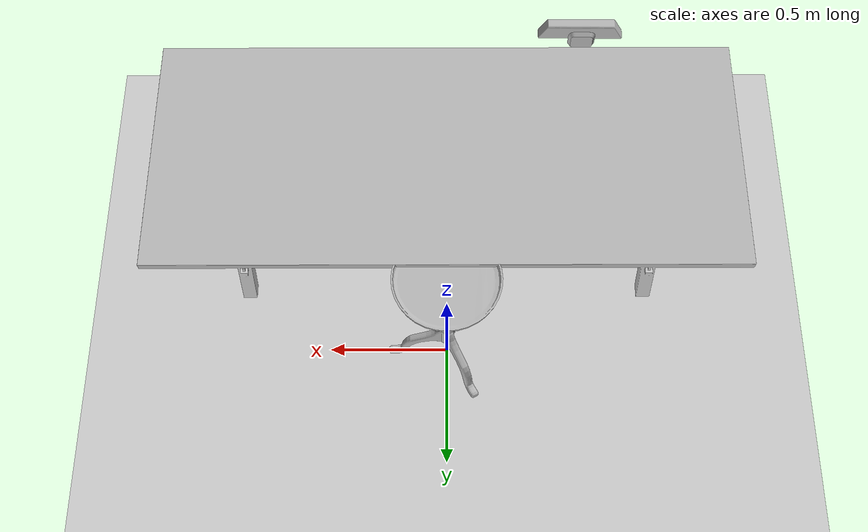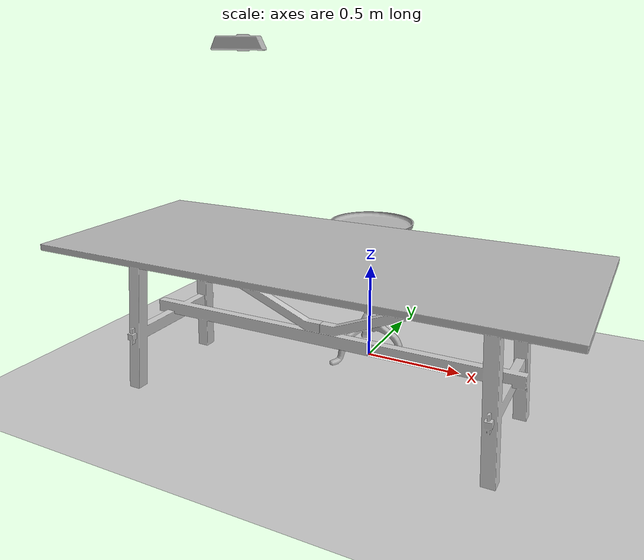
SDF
<?xml version="1.0" ?>
<sdf version="1.9">
  <world name="ur5_world">
    <physics name="1ms" type="ignored">
      <max_step_size>0.001</max_step_size>
      <real_time_factor>1.0</real_time_factor>
    </physics>
    <plugin filename="gz-sim-physics-system" name="gz::sim::systems::Physics"/>
    <plugin filename="gz-sim-user-commands-system" name="gz::sim::systems::UserCommands"/>
    <plugin filename="gz-sim-scene-broadcaster-system" name="gz::sim::systems::SceneBroadcaster"/>
    <plugin filename="gz-sim-contact-system" name="gz::sim::systems::Contact"/>

    <light type="directional" name="sun">
      <cast_shadows>true</cast_shadows>
      <pose>0 0 10 0 0 0</pose>
      <diffuse>0.8 0.8 0.8 1</diffuse>
      <specular>0.2 0.2 0.2 1</specular>
      <attenuation>
        <range>1000</range>
        <constant>0.9</constant>
        <linear>0.01</linear>
        <quadratic>0.001</quadratic>
      </attenuation>
      <direction>-0.5 0.1 -0.9</direction>
    </light>

    <model name="ground_plane">
      <static>true</static>
      <link name="link">
        <collision name="collision">
          <geometry>
            <plane>
              <normal>0 0 1</normal>
              <size>100 100</size>
            </plane>
          </geometry>
        </collision>
        <visual name="visual">
          <geometry>
            <plane>
              <normal>0 0 1</normal>
              <size>100 100</size>
            </plane>
          </geometry>
          <material>
            <ambient>0.8 0.8 0.8 1</ambient>
            <diffuse>0.8 0.8 0.8 1</diffuse>
          </material>
        </visual>
      </link>
    </model>

    <!-- Table / base / kinect use model:// from GZ_SIM_RESOURCE_PATH (models/scene) -->
    <include>
      <uri>model://modern_table</uri>
      <name>modern_table</name>
      <pose>0 -0.558 0 0 0 -3.1415926535</pose>
    </include>

    <include>
      <uri>model://robot_base</uri>
      <name>robot_base</name>
      <pose>0 0 -0.01037 0 0 0</pose>
    </include>

    <!-- Same pose as ROS1 main_scene.world; camera bridge in Phase 4 -->
    <include>
      <uri>model://kinect</uri>
      <name>kinect</name>
      <pose>-0.44 -0.50 1.58 1.58 1.57079 0</pose>
    </include>
  </world>
</sdf>

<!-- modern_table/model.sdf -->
<sdf version="1.7">
  <model name="modern_table">
    <static>true</static>
    <link name="link">
      <pose>0 0 0.74 0 0 0</pose>

      <collision name="surface">
        <pose>0 0 -0.015 0 0 0</pose>
        <geometry>
          <box>
            <size>2.35 1 0.03</size>
          </box>
        </geometry>
      </collision>

      <visual name="visual">
        <geometry>
          <mesh>
            <uri>model://modern_table/meshes/modern_table.dae</uri>
          </mesh>
        </geometry>
      </visual>
    </link>
  </model>
</sdf>

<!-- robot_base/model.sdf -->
<sdf version="1.7">
  <model name="robot_base">
    <static>true</static>
    <link name="link">
      <pose>0 0 0.73 0 0 0</pose>

      <collision name="surface">
        <pose>0 0 -0.015 0 0 0</pose>
        <geometry>
          <box>
            <size>2.35 1 0.03</size>
          </box>
        </geometry>
      </collision>

      <visual name="visual">
        <geometry>
          <mesh>
            <uri>model://robot_base/meshes/robot_base.dae</uri>
          </mesh>
        </geometry>
      </visual>
    </link>
  </model>
</sdf>

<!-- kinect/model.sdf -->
<sdf version="1.9">
  <model name="kinect">
    <static>true</static>
    <pose>0 0 0.036 0 0 0</pose>
    <link name="link">
      <inertial>
        <mass>0.1</mass>
        <inertia>
          <ixx>0.001</ixx>
          <ixy>0</ixy>
          <ixz>0</ixz>
          <iyy>0.001</iyy>
          <iyz>0</iyz>
          <izz>0.001</izz>
        </inertia>
      </inertial>
      <collision name="collision">
        <geometry>
          <box>
            <size>0.073 0.276 0.072</size>
          </box>
        </geometry>
      </collision>
      <visual name="visual">
        <geometry>
          <mesh>
            <uri>model://kinect/meshes/kinect.dae</uri>
          </mesh>
        </geometry>
      </visual>
      <!-- Camera sensor only; ROS bridge comes in Phase 4 (no Classic plugin) -->
      <sensor name="camera" type="camera">
        <pose>0 0 0 0 0 0</pose>
        <always_on>true</always_on>
        <update_rate>20</update_rate>
        <visualize>false</visualize>
        <camera name="kinect_rgb">
          <horizontal_fov>1.047198</horizontal_fov>
          <image>
            <width>640</width>
            <height>480</height>
            <format>R8G8B8</format>
          </image>
          <clip>
            <near>0.05</near>
            <far>3</far>
          </clip>
        </camera>
      </sensor>
    </link>
  </model>
</sdf>
